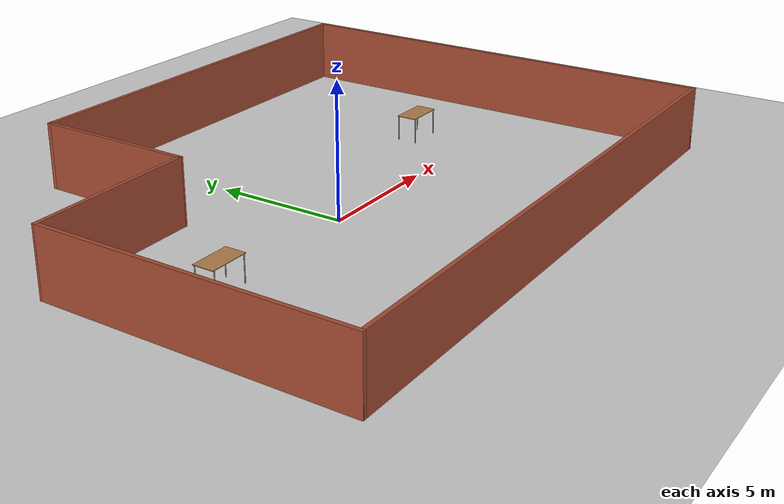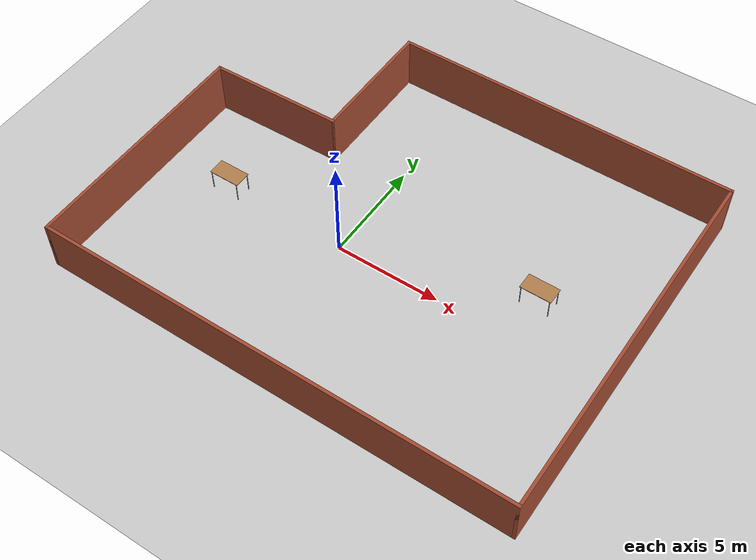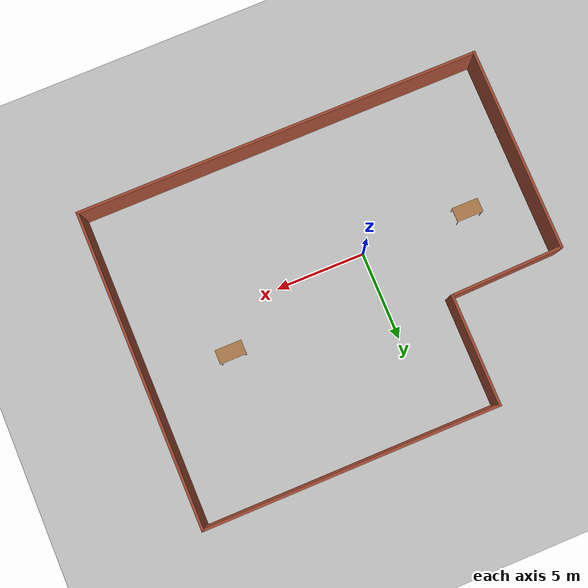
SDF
<sdf version="1.7">
 <world name="default">
  <light name="sun" type="directional">
   <pose>0 0 10 0 -0 0</pose>
   <diffuse>0.8 0.8 0.8 1</diffuse>
   <specular>0.2 0.2 0.2 1</specular>
   <attenuation>
    <range>1000</range>
    <constant>0.9</constant>
    <linear>0.01</linear>
    <quadratic>0.001</quadratic>
   </attenuation>
   <direction>-0.5 0.1 -0.9</direction>
   <spot><inner_angle>0</inner_angle><outer_angle>0</outer_angle><falloff>0</falloff></spot>
  </light>
  <model name="ground_plane">
   <static>1</static>
   <link name="link">
    <collision name="collision">
     <geometry><plane><normal>0 0 1</normal><size>100 100</size></plane></geometry>
     <surface>
      <contact><collide_bitmask>65535</collide_bitmask></contact>
      <friction><ode><mu>100</mu><mu2>50</mu2></ode></friction>
     </surface>
    </collision>
    <visual name="visual">
     <cast_shadows>0</cast_shadows>
     <geometry><plane><normal>0 0 1</normal><size>100 100</size></plane></geometry>
     <material>
      <script><uri>file://media/materials/scripts/gazebo.material</uri><name>Gazebo/Grey</name></script>
     </material>
    </visual>
   </link>
  </model>
  <gravity>0 0 -9.8</gravity>
  <magnetic_field>6e-06 2.3e-05 -4.2e-05</magnetic_field>
  <atmosphere type="adiabatic"/>
  <physics type="ode">
   <max_step_size>0.001</max_step_size>
   <real_time_factor>1</real_time_factor>
   <real_time_update_rate>1000</real_time_update_rate>
  </physics>
  <scene><ambient>0.4 0.4 0.4 1</ambient><background>0.7 0.7 0.7 1</background><shadows>1</shadows></scene>
  <spherical_coordinates>
   <surface_model>EARTH_WGS84</surface_model>
   <latitude_deg>0</latitude_deg>
   <longitude_deg>0</longitude_deg>
   <elevation>0</elevation>
   <heading_deg>0</heading_deg>
  </spherical_coordinates>
  <model name="basic.world">
   <pose>1.85544 1.39332 0 0 -0 0</pose>
   <link name="Wall_10">
    <collision name="Wall_10_Collision">
     <geometry><box><size>6.25 0.15 2.5</size></box></geometry>
     <pose>0 0 1.25 0 -0 0</pose>
    </collision>
    <visual name="Wall_10_Visual">
     <pose>0 0 1.25 0 -0 0</pose>
     <geometry><box><size>6.25 0.15 2.5</size></box></geometry>
     <material>
      <script><uri>file://media/materials/scripts/gazebo.material</uri><name>Gazebo/Bricks</name></script>
      <ambient>1 1 1 1</ambient>
     </material>
     <meta><layer>0</layer></meta>
    </visual>
    <pose>-5.04911 5.75 0 0 -0 -1.5708</pose>
   </link>
   <link name="Wall_11">
    <collision name="Wall_11_Collision">
     <geometry><box><size>6.4018 0.15 2.5</size></box></geometry>
     <pose>0 0 1.25 0 -0 0</pose>
    </collision>
    <visual name="Wall_11_Visual">
     <pose>0 0 1.25 0 -0 0</pose>
     <geometry><box><size>6.4018 0.15 2.5</size></box></geometry>
     <material>
      <script><uri>file://media/materials/scripts/gazebo.material</uri><name>Gazebo/Bricks</name></script>
      <ambient>1 1 1 1</ambient>
     </material>
     <meta><layer>0</layer></meta>
    </visual>
    <pose>-8.17411 2.625 0 0 -0 -3.1176</pose>
   </link>
   <link name="Wall_6">
    <collision name="Wall_6_Collision">
     <geometry><box><size>11.5 0.15 2.5</size></box></geometry>
     <pose>0 0 1.25 0 -0 0</pose>
    </collision>
    <visual name="Wall_6_Visual">
     <pose>0 0 1.25 0 -0 0</pose>
     <geometry><box><size>11.5 0.15 2.5</size></box></geometry>
     <material>
      <script><uri>file://media/materials/scripts/gazebo.material</uri><name>Gazebo/Bricks</name></script>
      <ambient>1 1 1 1</ambient>
     </material>
     <meta><layer>0</layer></meta>
    </visual>
    <pose>-11.2991 -3.125 0 0 -0 -1.5708</pose>
   </link>
   <link name="Wall_7">
    <collision name="Wall_7_Collision">
     <geometry><box><size>22.75 0.15 2.5</size></box></geometry>
     <pose>0 0 1.25 0 -0 0</pose>
    </collision>
    <visual name="Wall_7_Visual">
     <pose>0 0 1.25 0 -0 0</pose>
     <geometry><box><size>22.75 0.15 2.5</size></box></geometry>
     <material>
      <script><uri>file://media/materials/scripts/gazebo.material</uri><name>Gazebo/Bricks</name></script>
      <ambient>1 1 1 1</ambient>
     </material>
     <meta><layer>0</layer></meta>
    </visual>
    <pose>0.000889 -8.8 0 0 -0 0</pose>
   </link>
   <link name="Wall_8">
    <collision name="Wall_8_Collision">
     <geometry><box><size>17.75 0.15 2.5</size></box></geometry>
     <pose>0 0 1.25 0 -0 0</pose>
    </collision>
    <visual name="Wall_8_Visual">
     <pose>0 0 1.25 0 -0 0</pose>
     <geometry><box><size>17.75 0.15 2.5</size></box></geometry>
     <material>
      <script><uri>file://media/materials/scripts/gazebo.material</uri><name>Gazebo/Bricks</name></script>
      <ambient>1 1 1 1</ambient>
     </material>
     <meta><layer>0</layer></meta>
    </visual>
    <pose>11.3009 0 0 0 -0 1.5708</pose>
   </link>
   <link name="Wall_9">
    <collision name="Wall_9_Collision">
     <geometry><box><size>16.5 0.15 2.5</size></box></geometry>
     <pose>0 0 1.25 0 -0 0</pose>
    </collision>
    <visual name="Wall_9_Visual">
     <pose>0 0 1.25 0 -0 0</pose>
     <geometry><box><size>16.5 0.15 2.5</size></box></geometry>
     <material>
      <script><uri>file://media/materials/scripts/gazebo.material</uri><name>Gazebo/Bricks</name></script>
      <ambient>1 1 1 1</ambient>
     </material>
     <meta><layer>0</layer></meta>
    </visual>
    <pose>3.12589 8.8 0 0 -0 3.14159</pose>
   </link>
   <static>1</static>
  </model>
  <model name="table">
   <static>1</static>
   <link name="link">
    <collision name="surface">
     <pose>0 0 1 0 -0 0</pose>
     <geometry><box><size>1.5 0.8 0.03</size></box></geometry>
     <surface><friction><ode><mu>0.6</mu><mu2>0.6</mu2></ode></friction></surface>
    </collision>
    <visual name="visual1">
     <pose>0 0 1 0 -0 0</pose>
     <geometry><box><size>1.5 0.8 0.03</size></box></geometry>
     <material>
      <script><uri>file://media/materials/scripts/gazebo.material</uri><name>Gazebo/Wood</name></script>
     </material>
    </visual>
    <collision name="front_left_leg">
     <pose>0.68 0.38 0.5 0 -0 0</pose>
     <geometry><cylinder><radius>0.02</radius><length>1</length></cylinder></geometry>
    </collision>
    <visual name="front_left_leg">
     <pose>0.68 0.38 0.5 0 -0 0</pose>
     <geometry><cylinder><radius>0.02</radius><length>1</length></cylinder></geometry>
     <material>
      <script><uri>file://media/materials/scripts/gazebo.material</uri><name>Gazebo/Grey</name></script>
     </material>
    </visual>
    <collision name="front_right_leg">
     <pose>0.68 -0.38 0.5 0 -0 0</pose>
     <geometry><cylinder><radius>0.02</radius><length>1</length></cylinder></geometry>
    </collision>
    <visual name="front_right_leg">
     <pose>0.68 -0.38 0.5 0 -0 0</pose>
     <geometry><cylinder><radius>0.02</radius><length>1</length></cylinder></geometry>
     <material>
      <script><uri>file://media/materials/scripts/gazebo.material</uri><name>Gazebo/Grey</name></script>
     </material>
    </visual>
    <collision name="back_right_leg">
     <pose>-0.68 -0.38 0.5 0 -0 0</pose>
     <geometry><cylinder><radius>0.02</radius><length>1</length></cylinder></geometry>
    </collision>
    <visual name="back_right_leg">
     <pose>-0.68 -0.38 0.5 0 -0 0</pose>
     <geometry><cylinder><radius>0.02</radius><length>1</length></cylinder></geometry>
     <material>
      <script><uri>file://media/materials/scripts/gazebo.material</uri><name>Gazebo/Grey</name></script>
     </material>
    </visual>
    <collision name="back_left_leg">
     <pose>-0.68 0.38 0.5 0 -0 0</pose>
     <geometry><cylinder><radius>0.02</radius><length>1</length></cylinder></geometry>
    </collision>
    <visual name="back_left_leg">
     <pose>-0.68 0.38 0.5 0 -0 0</pose>
     <geometry><cylinder><radius>0.02</radius><length>1</length></cylinder></geometry>
     <material>
      <script><uri>file://media/materials/scripts/gazebo.material</uri><name>Gazebo/Grey</name></script>
     </material>
    </visual>
   </link>
   <pose>-6.0096 0.075635 0 0 -0 0</pose>
  </model>
  <model name="table_0">
   <static>1</static>
   <link name="link">
    <collision name="surface">
     <pose>0 0 1 0 -0 0</pose>
     <geometry><box><size>1.5 0.8 0.03</size></box></geometry>
     <surface><friction><ode><mu>0.6</mu><mu2>0.6</mu2></ode></friction></surface>
    </collision>
    <visual name="visual1">
     <pose>0 0 1 0 -0 0</pose>
     <geometry><box><size>1.5 0.8 0.03</size></box></geometry>
     <material>
      <script><uri>file://media/materials/scripts/gazebo.material</uri><name>Gazebo/Wood</name></script>
     </material>
    </visual>
    <collision name="front_left_leg">
     <pose>0.68 0.38 0.5 0 -0 0</pose>
     <geometry><cylinder><radius>0.02</radius><length>1</length></cylinder></geometry>
    </collision>
    <visual name="front_left_leg">
     <pose>0.68 0.38 0.5 0 -0 0</pose>
     <geometry><cylinder><radius>0.02</radius><length>1</length></cylinder></geometry>
     <material>
      <script><uri>file://media/materials/scripts/gazebo.material</uri><name>Gazebo/Grey</name></script>
     </material>
    </visual>
    <collision name="front_right_leg">
     <pose>0.68 -0.38 0.5 0 -0 0</pose>
     <geometry><cylinder><radius>0.02</radius><length>1</length></cylinder></geometry>
    </collision>
    <visual name="front_right_leg">
     <pose>0.68 -0.38 0.5 0 -0 0</pose>
     <geometry><cylinder><radius>0.02</radius><length>1</length></cylinder></geometry>
     <material>
      <script><uri>file://media/materials/scripts/gazebo.material</uri><name>Gazebo/Grey</name></script>
     </material>
    </visual>
    <collision name="back_right_leg">
     <pose>-0.68 -0.38 0.5 0 -0 0</pose>
     <geometry><cylinder><radius>0.02</radius><length>1</length></cylinder></geometry>
    </collision>
    <visual name="back_right_leg">
     <pose>-0.68 -0.38 0.5 0 -0 0</pose>
     <geometry><cylinder><radius>0.02</radius><length>1</length></cylinder></geometry>
     <material>
      <script><uri>file://media/materials/scripts/gazebo.material</uri><name>Gazebo/Grey</name></script>
     </material>
    </visual>
    <collision name="back_left_leg">
     <pose>-0.68 0.38 0.5 0 -0 0</pose>
     <geometry><cylinder><radius>0.02</radius><length>1</length></cylinder></geometry>
    </collision>
    <visual name="back_left_leg">
     <pose>-0.68 0.38 0.5 0 -0 0</pose>
     <geometry><cylinder><radius>0.02</radius><length>1</length></cylinder></geometry>
     <material>
      <script><uri>file://media/materials/scripts/gazebo.material</uri><name>Gazebo/Grey</name></script>
     </material>
    </visual>
   </link>
   <pose>8.56312 2.26166 0 0 -0 0</pose>
  </model>
 </world>
</sdf>
